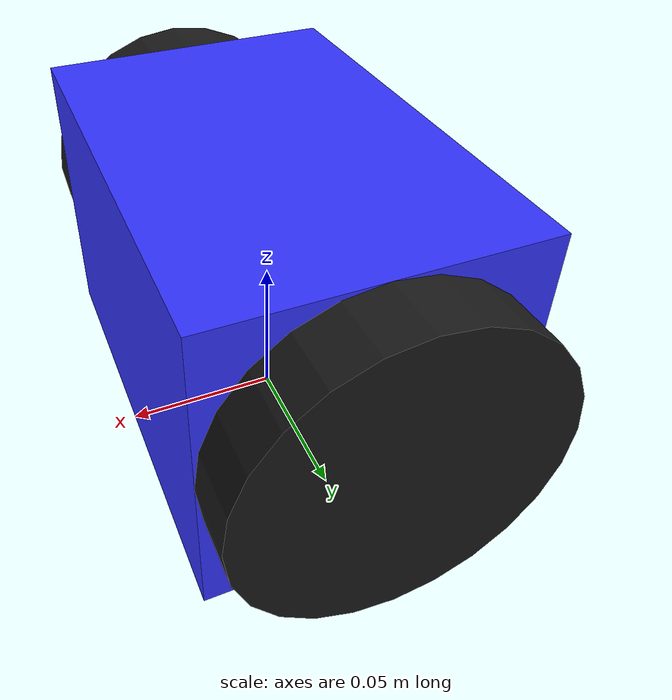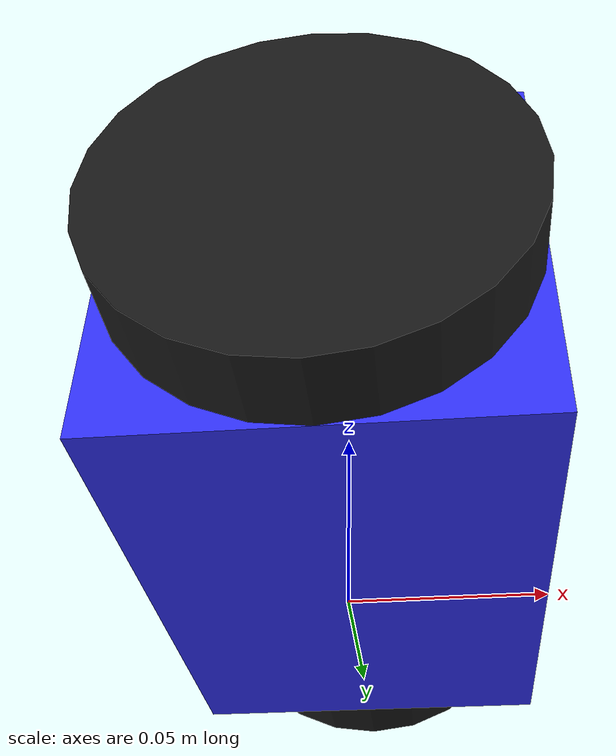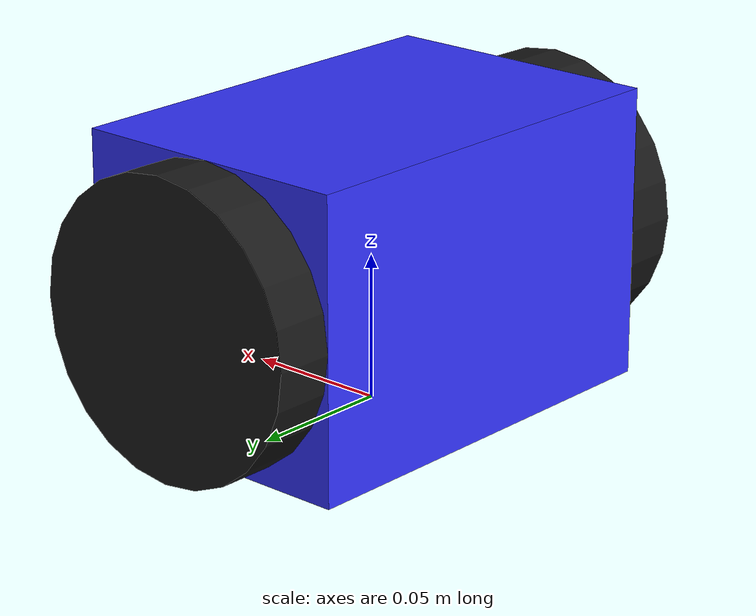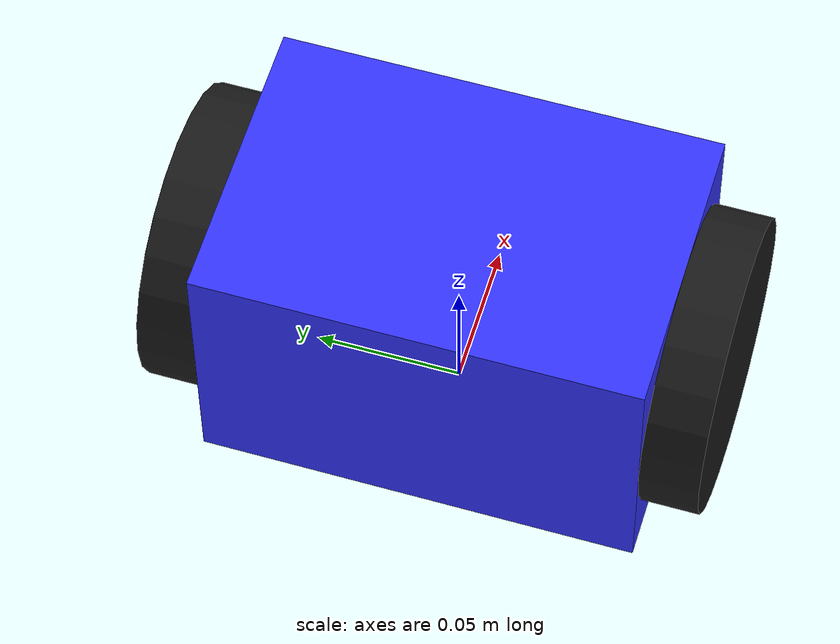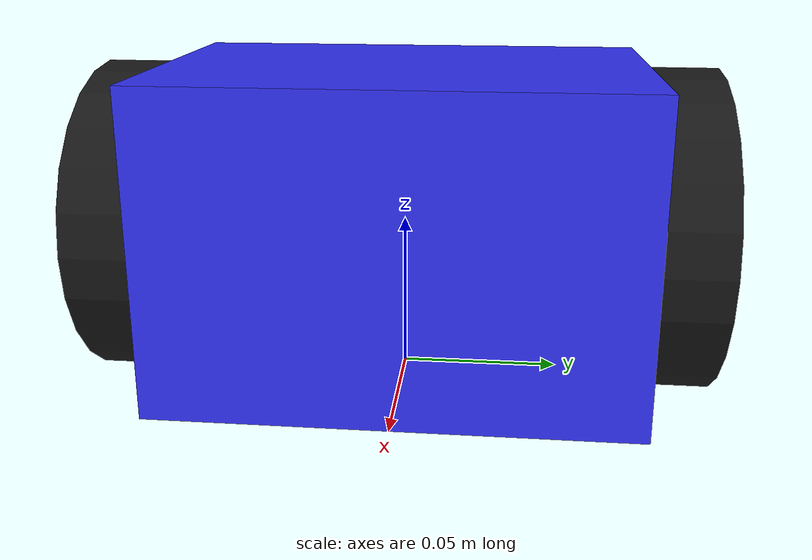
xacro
<?xml version="1.0"?>
<robot xmlns:xacro="http://www.ros.org/wiki/xacro" name="self_balancing_robot">

    <xacro:property name="PI" value="3.1415926535897931"/>
    <xacro:property name="chassis_mass" value="1.0"/>
    <xacro:property name="chassis_length" value="0.1"/>
    <xacro:property name="chassis_width" value="0.15"/>
    <xacro:property name="chassis_height" value="0.1"/>
    <xacro:property name="wheel_mass" value="0.1"/>
    <xacro:property name="wheel_radius" value="0.05"/>
    <xacro:property name="wheel_thickness" value="0.02"/>
    <xacro:property name="wheel_separation" value="${chassis_width + wheel_thickness}"/> <xacro:property name="imu_mass" value="0.01"/>
    <xacro:property name="imu_size" value="0.02"/>

    <xacro:macro name="box_inertia" params="m x y z">
        <inertial>
            <mass value="${m}"/>
            <inertia ixx="${(m/12) * (y*y + z*z)}" ixy="0.0" ixz="0.0"
                     iyy="${(m/12) * (x*x + z*z)}" iyz="0.0"
                     izz="${(m/12) * (x*x + y*y)}" />
        </inertial>
    </xacro:macro>

    <xacro:macro name="cylinder_inertia" params="m r h">
        <inertial>
            <mass value="${m}"/>
            <inertia ixx="${(m/12) * (3*r*r + h*h)}" ixy="0.0" ixz="0.0"
                     iyy="${(m/12) * (3*r*r + h*h)}" iyz="0.0"
                     izz="${(m/2) * (r*r)}" />
        </inertial>
    </xacro:macro>

    <link name="base_link">
        <visual>
            <origin xyz="0 0 ${wheel_radius}" rpy="0 0 0"/>
            <geometry>
                <box size="${chassis_length} ${chassis_width} ${chassis_height}"/>
            </geometry>
            <material name="blue"/>
        </visual>
        <collision>
             <origin xyz="0 0 ${wheel_radius}" rpy="0 0 0"/>
            <geometry>
                <box size="${chassis_length} ${chassis_width} ${chassis_height}"/>
            </geometry>
        </collision>
        <xacro:box_inertia m="${chassis_mass}" x="${chassis_length}" y="${chassis_width}" z="${chassis_height}"/>
    </link>

    <link name="imu_link"/>
    <joint name="imu_joint" type="fixed">
        <parent link="base_link"/>
        <child link="imu_link"/>
        <origin xyz="0 0 ${wheel_radius + chassis_height/2}" rpy="0 0 0"/>
    </joint>

    <xacro:macro name="wheel" params="prefix side_y">
        <link name="${prefix}_wheel_link">
            <visual>
                <origin xyz="0 0 0" rpy="${PI/2} 0 0"/>
                <geometry>
                    <cylinder radius="${wheel_radius}" length="${wheel_thickness}"/>
                </geometry>
                 <material name="black"/>
            </visual>
            <collision>
                 <origin xyz="0 0 0" rpy="${PI/2} 0 0"/>
                 <geometry>
                    <cylinder radius="${wheel_radius}" length="${wheel_thickness}"/>
                </geometry>
            </collision>
            <xacro:cylinder_inertia m="${wheel_mass}" r="${wheel_radius}" h="${wheel_thickness}"/>
        </link>

        <joint name="${prefix}_wheel_joint" type="continuous">
            <parent link="base_link"/>
            <child link="${prefix}_wheel_link"/>
             <origin xyz="0 ${side_y * wheel_separation / 2.0} ${wheel_radius}" rpy="0 0 0"/>
            <axis xyz="0 1 0"/> </joint>
    </xacro:macro>

    <xacro:wheel prefix="left" side_y="1"/>
    <xacro:wheel prefix="right" side_y="-1"/>

    <material name="blue">
        <color rgba="0.2 0.2 1.0 1.0"/>
    </material>
     <material name="black">
        <color rgba="0.1 0.1 0.1 1.0"/>
     </material>
     <material name="red">
         <color rgba="1.0 0.1 0.1 1.0"/>
      </material>

    <gazebo>

      <plugin name='gz::sim::systems::Sensors' filename='gz-sim-sensors-system'>
            <sensors>
                <sensor name='imu_sensor' type='imu'>
                    <topic>imu_sensor_raw</topic> <update_rate>100</update_rate>
                     <imu>
                        ... angular_velocity and linear_acceleration noise ...
                     </imu>
                    <always_on>1</always_on>
                    <visualize>false</visualize>
                    <pose relative_to="imu_link">0 0 0 0 0 0</pose>

                    <plugin filename="gz-sim-imu-system" name="gz::sim::systems::Imu">
                        <ros>
                            <namespace>/</namespace>
                            <topic>imu</topic>
                            </ros>
                        <initial_orientation_as_reference>false</initial_orientation_as_reference>
                    </plugin>
                    </sensor>
            </sensors>
        </plugin>

        <plugin filename="gz-sim-diff-drive-system" name="gz::sim::systems::DiffDrive">
            <left_joint>left_wheel_joint</left_joint>
            <right_joint>right_wheel_joint</right_joint>
            <wheel_separation>${wheel_separation}</wheel_separation>
            <wheel_radius>${wheel_radius}</wheel_radius>
            <ros>
                 <namespace>/</namespace>
                 <remapping>cmd_vel:=cmd_vel</remapping>
                 <remapping>odom:=odom</remapping>
                 <remapping>tf:=tf</remapping>
            </ros>
             <odom_publish_frequency>50</odom_publish_frequency>
             <frame_id>odom</frame_id>
            <child_frame_id>base_link</child_frame_id>
        </plugin>

    </gazebo>

    <gazebo reference="base_link">
        <material>Gazebo/Blue</material>
    </gazebo>
     <gazebo reference="left_wheel_link">
        <material>Gazebo/Black</material>
        <mu1>0.8</mu1> <mu2>0.8</mu2> <kp>1000000.0</kp> <kd>1.0</kd> </gazebo>
    <gazebo reference="right_wheel_link">
        <material>Gazebo/Black</material>
         <mu1>0.8</mu1>
        <mu2>0.8</mu2>
         <kp>1000000.0</kp>
        <kd>1.0</kd>
    </gazebo>

</robot>
